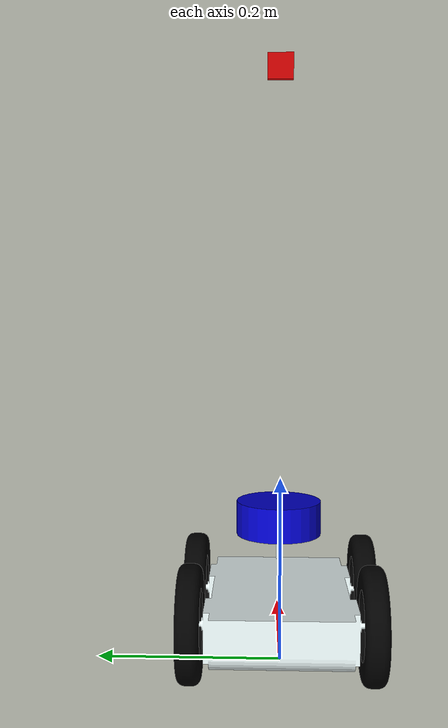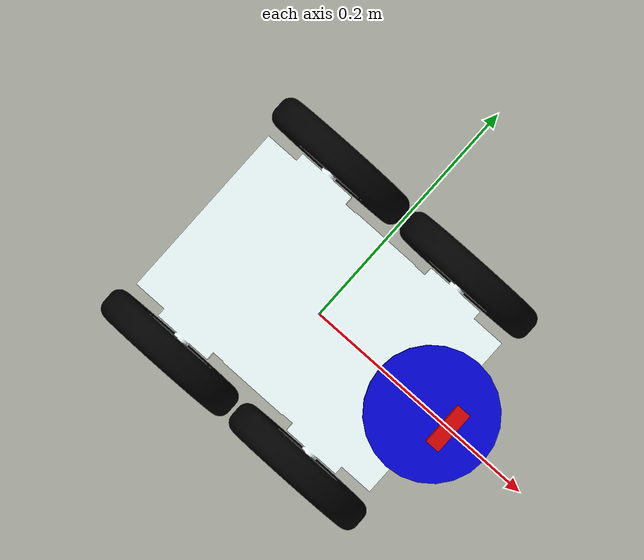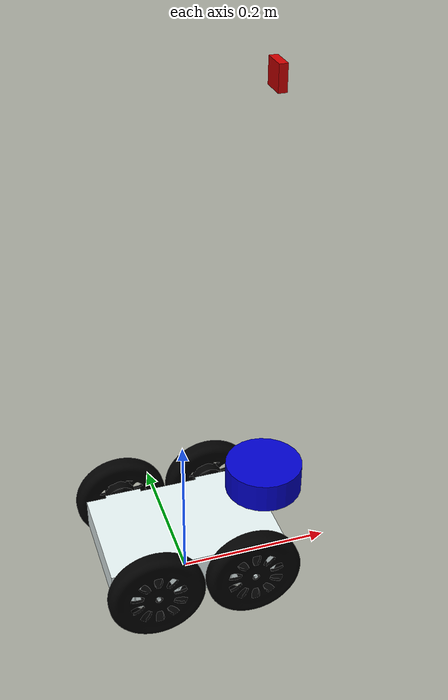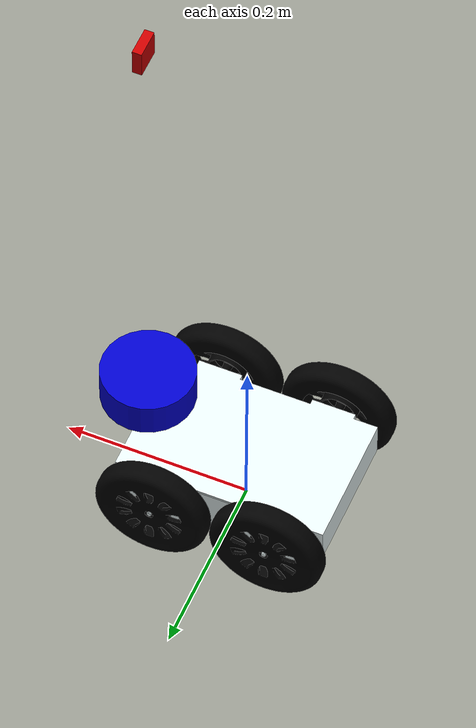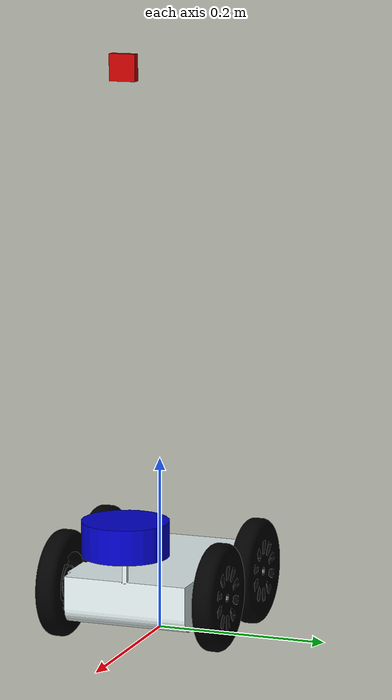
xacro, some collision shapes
<?xml version="1.0"?>
<robot name="robot_name"
    xmlns:xacro="http://ros.org/wiki/xacro">

    <xacro:include filename="properties.xacro" />

    <!-- Root Link -->
    <link name="base_footprint">
    </link>
    <link name="base_link">
    </link>
    <joint name="base_foot_to_base_link" type="fixed">
        <parent link="base_link"/>
        <child link="base_footprint"/>
        <origin xyz="0.0 0.0 0.0" rpy="0.0 0.0 0.0"/>
    </joint>

    <link name="base">
        <visual>
            <origin xyz="0.0 0.0 0" rpy="0.0 0.0 0.0" />
            <geometry>
                <mesh filename="package://robot_description/meshes/base.stl" scale="${scale_stl}" />
            </geometry>
            <material name="grey" />
        </visual>
        <collision>
            <geometry>
                <box size="${base_length} ${base_width} ${base_height}" />
            </geometry>
        </collision>
        <inertial>
            <mass value="${base_mass}" />
            <origin xyz="0 0 0" rpy="0 0 0" />
            <inertia ixx="${base_mass * (base_width * base_width + base_height * base_height) / 12.0}" ixy="0.0" ixz="0.0" iyy="${base_mass * (base_length * base_length + base_height * base_height) / 12.0}" iyz="0.0" izz="${base_mass * (base_length * base_length + base_width * base_width) / 12.0}" />
        </inertial>
    </link>

    <!-- Wheel macro with correct cylindrical inertia -->
    <xacro:macro name="wheel_link" params="prefix">
        <link name="${prefix}_wheel">
            <visual>
                <origin xyz="0 0 0" rpy="0 0 0" />
                <geometry>
                    <mesh filename="package://robot_description/meshes/blue_tyre.stl" scale="${scale_stl}" />
                </geometry>
                <material name="black" />
            </visual>
            <collision>
                <origin rpy="1.5708 0 0" xyz="0 0 0" />
                <geometry>
                    <cylinder radius="${wheel_radius}" length="${wheel_thickness}" />
                </geometry>
            </collision>
            <inertial>
                <mass value="${wheel_mass}" />
                <origin xyz="0 0 0" rpy="0 0 0" />
                <inertia ixx="${wheel_mass * (3 * wheel_radius * wheel_radius + wheel_thickness * wheel_thickness) / 12}" ixy="0" ixz="0" iyy="${wheel_mass * wheel_radius * wheel_radius / 2}" iyz="0" izz="${wheel_mass * (3 * wheel_radius * wheel_radius + wheel_thickness * wheel_thickness) / 12}" />
            </inertial>
        </link>

        <gazebo reference="${prefix}_wheel">
            <mu1>5</mu1>
            <mu2>5</mu2>
        </gazebo>
        <gazebo reference="${prefix}_wheel">
            <kp>1000000</kp>
            <kd>100</kd>
        </gazebo>
    </xacro:macro>

    <!-- Use the wheel macro for all wheels -->
    <xacro:wheel_link prefix="front_right" />
    <xacro:wheel_link prefix="front_left" />
    <xacro:wheel_link prefix="rear_right" />
    <xacro:wheel_link prefix="rear_left" />

    <!-- Joints remain the same -->
    <joint name="base_link_to_base" type="fixed">
        <parent link="base_link" />
        <child link="base" />
        <origin xyz="0.0 0.0 ${wheel_radius}" rpy="0.0 0.0 0.0" />
    </joint>

    <joint name="front_right_wheel_joint" type="continuous">
        <origin xyz="${wheel_dist_x} -${wheel_dist_y} 0" rpy="0 0 0" />
        <parent link="base" />
        <child link="front_right_wheel" />
        <axis xyz="0 1 0" />
    </joint>

    <joint name="front_left_wheel_joint" type="continuous">
        <origin xyz="${wheel_dist_x} ${wheel_dist_y} 0" rpy="0 0 ${pie}" />
        <parent link="base" />
        <child link="front_left_wheel" />
        <axis xyz="0 -1 0" />
    </joint>

    <joint name="rear_right_wheel_joint" type="continuous">
        <origin xyz="-${wheel_dist_x} -${wheel_dist_y} 0" rpy="0 0 0" />
        <parent link="base" />
        <child link="rear_right_wheel" />
        <axis xyz="0 1 0" />
    </joint>

    <joint name="rear_left_wheel_joint" type="continuous">
        <origin xyz="-${wheel_dist_x} ${wheel_dist_y} 0" rpy="0 0 -${pie}" />
        <parent link="base" />
        <child link="rear_left_wheel" />
        <axis xyz="0 -1 0" />
    </joint>

    <gazebo>
        <plugin filename="gz-sim-odometry-publisher-system" name="gz::sim::systems::OdometryPublisher">
            <odom_frame>odom</odom_frame>
            <robot_base_frame>base_link</robot_base_frame>
            <odom_publisher_frequency>60</odom_publisher_frequency>
            <odom_topic>odom</odom_topic>
            <tf_topic>tf</tf_topic>
        </plugin>
    </gazebo>

    <xacro:include filename="laser.urdf.xacro" />
    <xacro:include filename="depth_camera.xacro" />
    <xacro:include filename="camera.xacro" />
    <xacro:include filename="gazebo_control.xacro" />

</robot>

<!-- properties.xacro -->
<robot name="robot_name" xmlns:xacro="http://ros.org/wiki/xacro">

    <material name="blue">
        <color rgba="0 0 0.8 1" />
    </material>
    <material name="red">
        <color rgba="0.8 0 0 1" />
    </material>
    <material name="grey">
        <color rgba="0.9 0.95 0.95 1.0" />
    </material>
    <material name="black">
        <color rgba="0 0 0 1" />
    </material>
    <material name="green">
        <color rgba="0.0 0.8 0.0 1.0" />
    </material>

<!-- multiply all the distances and values by 0.3 -->
    <!-- Properties -->
    <xacro:property name="scale_stl" value="0.3 0.3 0.3" />
    <xacro:property name="wheel_dist_x" value="0.063" />
    <xacro:property name="wheel_dist_y" value="0.105" />
    <xacro:property name="lidar_dist_x" value="0.109" />
    <xacro:property name="lidar_dist_y" value="0" />
    <xacro:property name="lidar_dist_z" value="0.072" />
    <xacro:property name="pie" value="3.1415926" />

    <!-- Wheel properties -->
    <xacro:property name="wheel_radius" value="0.06" />
    <xacro:property name="wheel_thickness" value="0.03" />
    <xacro:property name="wheel_mass" value="1.0" />

    <!-- Base properties -->
    <xacro:property name="base_mass" value="15.0" />
    <xacro:property name="base_length" value="0.228" />
    <xacro:property name="base_width" value="0.1455" />
    <xacro:property name="base_height" value="0.054" />
    <xacro:property name="camera_height" value="0.600" />

</robot>

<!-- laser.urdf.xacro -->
<robot xmlns:xacro="http://www.ros.org/wiki/xacro">

  <joint name="laser_joint" type="fixed">
    <origin xyz="${lidar_dist_x} ${lidar_dist_y} ${lidar_dist_z}" rpy="0 0 0" />
    <parent link="base" />
    <child link="laser" />
  </joint>

  <!-- Lidar link -->
  <link name="laser">
    <visual>
      <origin rpy="0 0 0" xyz="0 0 0" />
      <geometry>
        <mesh filename="package://robot_description/meshes/mid_360.stl" scale="${scale_stl}" />
      </geometry>
      <material name="blue" />
    </visual>
    <collision>
      <geometry>
        <cylinder radius="0.05" length="0.04" />
      </geometry>
    </collision>
    <inertial>
      <mass value="0.5" />
      <origin xyz="0 0 0" rpy="0 0 0" />
      <inertia ixx="0.0001" ixy="0" ixz="0" iyy="0.0001" iyz="0" izz="0.0001" />
    </inertial>
  </link>

  <gazebo reference="laser">
    <material>Gazebo/Red</material>

    <sensor name="laser" type="gpu_lidar">
      <pose> 0 0 0 0 0 0 </pose>
      <visualize>false</visualize>
      <update_rate>10</update_rate>
      <lidar>
        <scan>
          <horizontal>
            <samples>360</samples>
            <min_angle>-3.14</min_angle>
            <max_angle>3.14</max_angle>
          </horizontal>
        </scan>
        <range>
          <min>0.3</min>
          <max>30</max>
        </range>
        <noise>
          <type>gaussian</type>
          <mean>0.0</mean>
          <stddev>0.0</stddev>          <!-- Default is nonzero -->
        </noise>
      </lidar>
      <topic>scan</topic>
      <gz_frame_id>laser</gz_frame_id>
    </sensor>
  </gazebo>

</robot>

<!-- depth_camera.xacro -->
<robot xmlns:xacro="http://www.ros.org/wiki/xacro">

    <joint name="depth_camera_joint" type="fixed">
        <parent link="base"/>
        <child link="depth_camera_link"/>
        <origin xyz="${lidar_dist_x} ${lidar_dist_y} ${camera_height}" rpy="0 0 0"/>
    </joint>

    <link name="depth_camera_link">
        <visual>
            <geometry>
                <box size="0.010 0.03 0.03"/>
            </geometry>
            <material name="red"/>
        </visual>
    </link>

    <joint name="depth_camera_optical_joint" type="fixed">
        <parent link="depth_camera_link"/>
        <child link="depth_camera_link_optical"/>
        <origin xyz="0 0 0" rpy="${-pi/2} 0 ${-pi/2}"/>
    </joint>

    <link name="depth_camera_link_optical"></link>

    <gazebo reference="depth_camera_link">
        <material>Gazebo/Red</material>

        <sensor name="depth_camera" type="depth_camera">
            <pose> 0 0 0 0 0 0 </pose>
            <visualize>true</visualize>
            <update_rate>10</update_rate>
            <camera>
                <camera_info_topic>depth_camera/camera_info</camera_info_topic>
                <horizontal_fov>1.089</horizontal_fov>
                <image>
                    <format>R_FLOAT32</format>
                    <width>640</width>
                    <height>480</height>
                </image>
                <clip>
                    <near>0.05</near>
                    <far>8.0</far>
                </clip>
            </camera>
            <depth_camera>
                <output>depths</output>
            </depth_camera>
            <topic>depth_camera/depth</topic>
            <gz_frame_id>depth_camera_link_optical</gz_frame_id>
        </sensor>
    </gazebo>

</robot>

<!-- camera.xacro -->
<robot xmlns:xacro="http://www.ros.org/wiki/xacro">

    <joint name="camera_joint" type="fixed">
        <parent link="base"/>
        <child link="camera_link"/>
        <origin xyz="${lidar_dist_x} ${lidar_dist_y} ${camera_height}" rpy="0 0 0"/>
    </joint>

    <link name="camera_link">
        <visual>
            <geometry>
                <box size="0.010 0.03 0.03"/>
            </geometry>
            <material name="red"/>
        </visual>
    </link>

    <joint name="camera_optical_joint" type="fixed">
        <parent link="camera_link"/>
        <child link="camera_link_optical"/>
        <origin xyz="0 0 0" rpy="${-pi/2} 0 ${-pi/2}"/>
    </joint>

    <link name="camera_link_optical"></link>

    <gazebo reference="camera_link">
        <material>Gazebo/Red</material>

        <sensor name="camera" type="camera">
            <pose> 0 0 0 0 0 0 </pose>
            <visualize>true</visualize>
            <update_rate>10</update_rate>
            <camera>
                <camera_info_topic>camera/camera_info</camera_info_topic>
                <horizontal_fov>1.089</horizontal_fov>
                <image>
                    <format>R8G8B8</format>
                    <width>640</width>
                    <height>480</height>
                </image>
                <clip>
                    <near>0.05</near>
                    <far>8.0</far>
                </clip>
            </camera>
            <topic>camera/image_raw</topic>
            <gz_frame_id>camera_link_optical</gz_frame_id>
        </sensor>
    </gazebo>

</robot>
